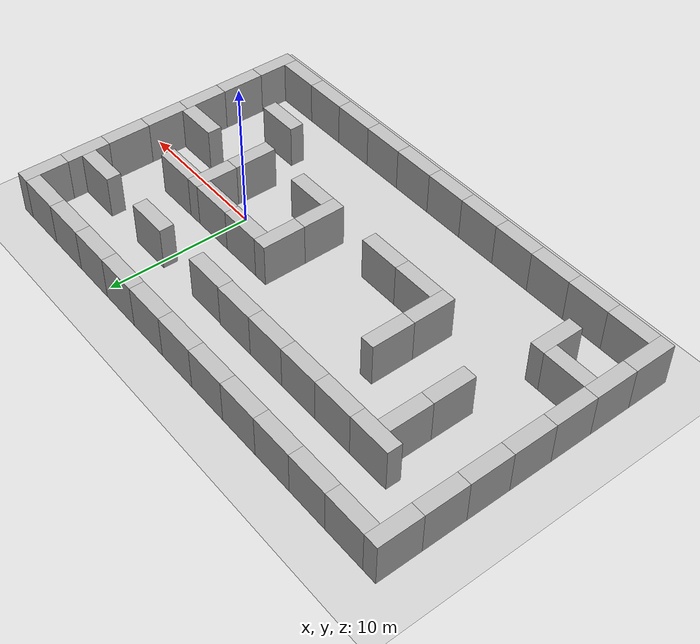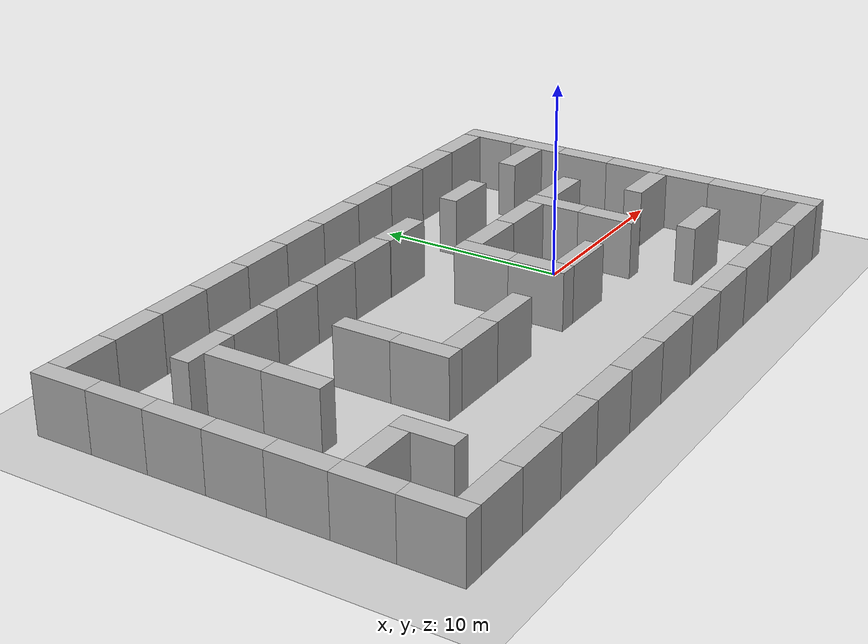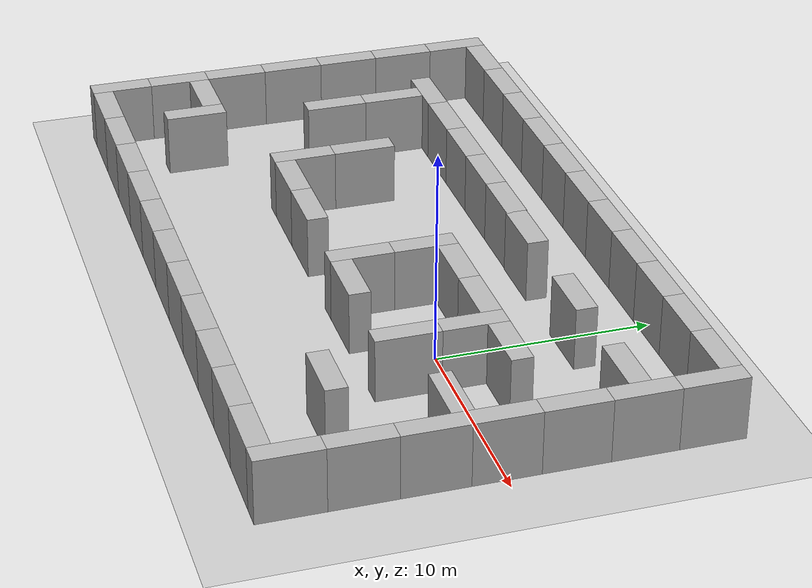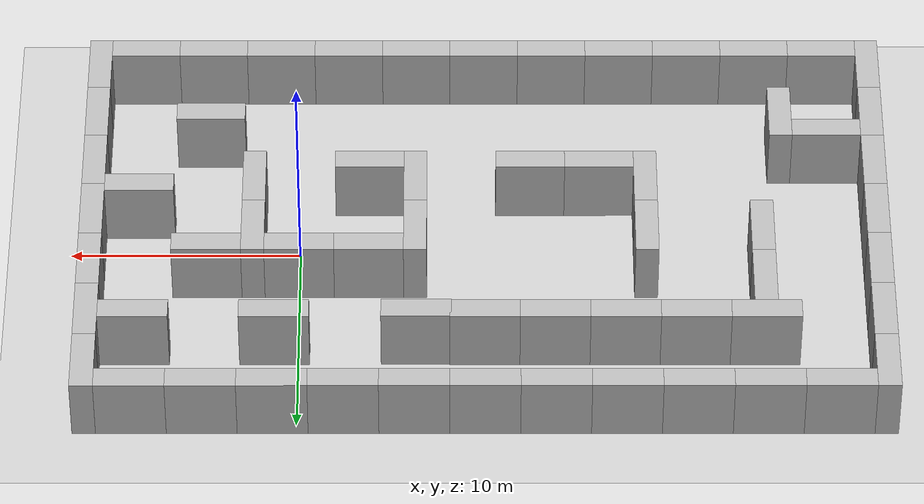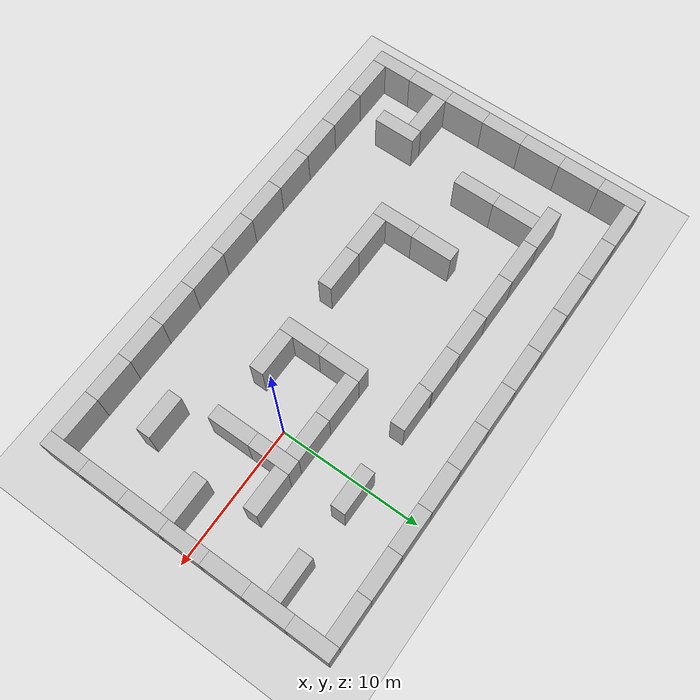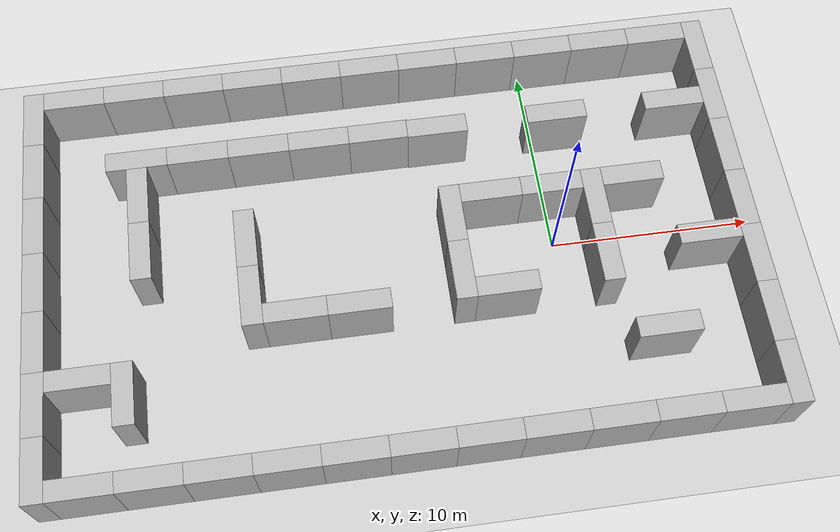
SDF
<sdf version="1.6">
 <world name="default">
  <light name="sun" type="directional">
   <pose>0 0 10 0 -0 0</pose>
   <diffuse>0.8 0.8 0.8 1</diffuse>
   <specular>0.2 0.2 0.2 1</specular>
   <attenuation>
    <range>1000</range>
    <constant>0.9</constant>
    <linear>0.01</linear>
    <quadratic>0.001</quadratic>
   </attenuation>
   <direction>-0.5 0.1 -0.9</direction>
  </light>
  <model name="ground_plane">
   <static>1</static>
   <link name="link">
    <collision name="collision">
     <geometry><plane><normal>0 0 1</normal><size>100 100</size></plane></geometry>
     <surface><friction><ode><mu>100</mu><mu2>50</mu2></ode></friction></surface>
    </collision>
    <visual name="visual">
     <cast_shadows>0</cast_shadows>
     <geometry><plane><normal>0 0 1</normal><size>100 100</size></plane></geometry>
     <material>
      <script><uri>file://media/materials/scripts/gazebo.material</uri><name>Gazebo/Grey</name></script>
     </material>
    </visual>
   </link>
  </model>
  <gravity>0 0 -9.8</gravity>
  <magnetic_field>6e-06 2.3e-05 -4.2e-05</magnetic_field>
  <atmosphere type="adiabatic"/>
  <physics name="default_physics" default="0" type="ode">
   <max_step_size>0.001</max_step_size>
   <real_time_factor>1</real_time_factor>
   <real_time_update_rate>1000</real_time_update_rate>
  </physics>
  <scene><ambient>0.4 0.4 0.4 1</ambient><background>0.7 0.7 0.7 1</background><shadows>1</shadows></scene>
  <spherical_coordinates>
   <surface_model>EARTH_WGS84</surface_model>
   <latitude_deg>0</latitude_deg>
   <longitude_deg>0</longitude_deg>
   <elevation>0</elevation>
   <heading_deg>0</heading_deg>
  </spherical_coordinates>
  <model name="brick_box_3x1x3">
   <static>1</static>
   <link name="chassis">
    <pose>0 0 1.5 0 -0 0</pose>
    <collision name="collision"><geometry><box><size>3 1 3</size></box></geometry></collision>
    <visual name="visual">
     <geometry><mesh><uri>model://brick_box_3x1x3/meshes/simple_box.dae</uri><scale>3 1 3</scale></mesh></geometry>
     <material>
      <script>
       <uri>model://brick_box_3x1x3/materials/scripts</uri>
       <uri>model://brick_box_3x1x3/materials/textures</uri>
       <name>BrickBox/Diffuse</name>
      </script>
     </material>
    </visual>
   </link>
   <pose>-8 10 0 0 -0 0</pose>
  </model>
  <model name="brick_box_3x1x3_clone">
   <static>1</static>
   <link name="chassis">
    <pose>0 0 1.5 0 -0 0</pose>
    <collision name="collision"><geometry><box><size>3 1 3</size></box></geometry></collision>
    <visual name="visual">
     <geometry><mesh><uri>model://brick_box_3x1x3/meshes/simple_box.dae</uri><scale>3 1 3</scale></mesh></geometry>
     <material>
      <script>
       <uri>model://brick_box_3x1x3/materials/scripts</uri>
       <uri>model://brick_box_3x1x3/materials/textures</uri>
       <name>BrickBox/Diffuse</name>
      </script>
     </material>
    </visual>
   </link>
   <pose>-5 10 0 0 -0 0</pose>
  </model>
  <model name="brick_box_3x1x3_clone_0">
   <static>1</static>
   <link name="chassis">
    <pose>0 0 1.5 0 -0 0</pose>
    <collision name="collision"><geometry><box><size>3 1 3</size></box></geometry></collision>
    <visual name="visual">
     <geometry><mesh><uri>model://brick_box_3x1x3/meshes/simple_box.dae</uri><scale>3 1 3</scale></mesh></geometry>
     <material>
      <script>
       <uri>model://brick_box_3x1x3/materials/scripts</uri>
       <uri>model://brick_box_3x1x3/materials/textures</uri>
       <name>BrickBox/Diffuse</name>
      </script>
     </material>
    </visual>
   </link>
   <pose>-2 10 0 0 -0 0</pose>
  </model>
  <model name="brick_box_3x1x3_clone_0_clone">
   <static>1</static>
   <link name="chassis">
    <pose>0 0 1.5 0 -0 0</pose>
    <collision name="collision"><geometry><box><size>3 1 3</size></box></geometry></collision>
    <visual name="visual">
     <geometry><mesh><uri>model://brick_box_3x1x3/meshes/simple_box.dae</uri><scale>3 1 3</scale></mesh></geometry>
     <material>
      <script>
       <uri>model://brick_box_3x1x3/materials/scripts</uri>
       <uri>model://brick_box_3x1x3/materials/textures</uri>
       <name>BrickBox/Diffuse</name>
      </script>
     </material>
    </visual>
   </link>
   <pose>1 10 0 0 -0 0</pose>
  </model>
  <model name="brick_box_3x1x3_clone_0_clone_0">
   <static>1</static>
   <link name="chassis">
    <pose>0 0 1.5 0 -0 0</pose>
    <collision name="collision"><geometry><box><size>3 1 3</size></box></geometry></collision>
    <visual name="visual">
     <geometry><mesh><uri>model://brick_box_3x1x3/meshes/simple_box.dae</uri><scale>3 1 3</scale></mesh></geometry>
     <material>
      <script>
       <uri>model://brick_box_3x1x3/materials/scripts</uri>
       <uri>model://brick_box_3x1x3/materials/textures</uri>
       <name>BrickBox/Diffuse</name>
      </script>
     </material>
    </visual>
   </link>
   <pose>4 10 0 0 -0 0</pose>
  </model>
  <model name="brick_box_3x1x3_clone_0_clone_1">
   <static>1</static>
   <link name="chassis">
    <pose>0 0 1.5 0 -0 0</pose>
    <collision name="collision"><geometry><box><size>3 1 3</size></box></geometry></collision>
    <visual name="visual">
     <geometry><mesh><uri>model://brick_box_3x1x3/meshes/simple_box.dae</uri><scale>3 1 3</scale></mesh></geometry>
     <material>
      <script>
       <uri>model://brick_box_3x1x3/materials/scripts</uri>
       <uri>model://brick_box_3x1x3/materials/textures</uri>
       <name>BrickBox/Diffuse</name>
      </script>
     </material>
    </visual>
   </link>
   <pose>7 10 0 0 -0 0</pose>
  </model>
  <model name="brick_box_3x1x3_clone_0_clone_2">
   <static>1</static>
   <link name="chassis">
    <pose>0 0 1.5 0 -0 0</pose>
    <collision name="collision"><geometry><box><size>3 1 3</size></box></geometry></collision>
    <visual name="visual">
     <geometry><mesh><uri>model://brick_box_3x1x3/meshes/simple_box.dae</uri><scale>3 1 3</scale></mesh></geometry>
     <material>
      <script>
       <uri>model://brick_box_3x1x3/materials/scripts</uri>
       <uri>model://brick_box_3x1x3/materials/textures</uri>
       <name>BrickBox/Diffuse</name>
      </script>
     </material>
    </visual>
   </link>
   <pose>-25 9 0 0 0 -1.5708</pose>
  </model>
  <model name="brick_box_3x1x3_clone_0_clone_2_clone">
   <static>1</static>
   <link name="chassis">
    <pose>0 0 1.5 0 -0 0</pose>
    <collision name="collision"><geometry><box><size>3 1 3</size></box></geometry></collision>
    <visual name="visual">
     <geometry><mesh><uri>model://brick_box_3x1x3/meshes/simple_box.dae</uri><scale>3 1 3</scale></mesh></geometry>
     <material>
      <script>
       <uri>model://brick_box_3x1x3/materials/scripts</uri>
       <uri>model://brick_box_3x1x3/materials/textures</uri>
       <name>BrickBox/Diffuse</name>
      </script>
     </material>
    </visual>
   </link>
   <pose>-25 6 0 0 0 -1.5708</pose>
  </model>
  <model name="brick_box_3x1x3_clone_0_clone_2_clone_0">
   <static>1</static>
   <link name="chassis">
    <pose>0 0 1.5 0 -0 0</pose>
    <collision name="collision"><geometry><box><size>3 1 3</size></box></geometry></collision>
    <visual name="visual">
     <geometry><mesh><uri>model://brick_box_3x1x3/meshes/simple_box.dae</uri><scale>3 1 3</scale></mesh></geometry>
     <material>
      <script>
       <uri>model://brick_box_3x1x3/materials/scripts</uri>
       <uri>model://brick_box_3x1x3/materials/textures</uri>
       <name>BrickBox/Diffuse</name>
      </script>
     </material>
    </visual>
   </link>
   <pose>-25 3 0 0 0 -1.5708</pose>
  </model>
  <model name="brick_box_3x1x3_clone_0_clone_2_clone_1">
   <static>1</static>
   <link name="chassis">
    <pose>0 0 1.5 0 -0 0</pose>
    <collision name="collision"><geometry><box><size>3 1 3</size></box></geometry></collision>
    <visual name="visual">
     <geometry><mesh><uri>model://brick_box_3x1x3/meshes/simple_box.dae</uri><scale>3 1 3</scale></mesh></geometry>
     <material>
      <script>
       <uri>model://brick_box_3x1x3/materials/scripts</uri>
       <uri>model://brick_box_3x1x3/materials/textures</uri>
       <name>BrickBox/Diffuse</name>
      </script>
     </material>
    </visual>
   </link>
   <pose>-25 0 0 0 0 -1.5708</pose>
  </model>
  <model name="brick_box_3x1x3_clone_0_clone_2_clone_2">
   <static>1</static>
   <link name="chassis">
    <pose>0 0 1.5 0 -0 0</pose>
    <collision name="collision"><geometry><box><size>3 1 3</size></box></geometry></collision>
    <visual name="visual">
     <geometry><mesh><uri>model://brick_box_3x1x3/meshes/simple_box.dae</uri><scale>3 1 3</scale></mesh></geometry>
     <material>
      <script>
       <uri>model://brick_box_3x1x3/materials/scripts</uri>
       <uri>model://brick_box_3x1x3/materials/textures</uri>
       <name>BrickBox/Diffuse</name>
      </script>
     </material>
    </visual>
   </link>
   <pose>-25 -3 0 0 0 -1.5708</pose>
  </model>
  <model name="brick_box_3x1x3_clone_0_clone_2_clone_3">
   <static>1</static>
   <link name="chassis">
    <pose>0 0 1.5 0 -0 0</pose>
    <collision name="collision"><geometry><box><size>3 1 3</size></box></geometry></collision>
    <visual name="visual">
     <geometry><mesh><uri>model://brick_box_3x1x3/meshes/simple_box.dae</uri><scale>3 1 3</scale></mesh></geometry>
     <material>
      <script>
       <uri>model://brick_box_3x1x3/materials/scripts</uri>
       <uri>model://brick_box_3x1x3/materials/textures</uri>
       <name>BrickBox/Diffuse</name>
      </script>
     </material>
    </visual>
   </link>
   <pose>-25 -6 0 0 0 -1.5708</pose>
  </model>
  <model name="brick_box_3x1x3_clone_0_clone_2_clone_4">
   <static>1</static>
   <link name="chassis">
    <pose>0 0 1.5 0 -0 0</pose>
    <collision name="collision"><geometry><box><size>3 1 3</size></box></geometry></collision>
    <visual name="visual">
     <geometry><mesh><uri>model://brick_box_3x1x3/meshes/simple_box.dae</uri><scale>3 1 3</scale></mesh></geometry>
     <material>
      <script>
       <uri>model://brick_box_3x1x3/materials/scripts</uri>
       <uri>model://brick_box_3x1x3/materials/textures</uri>
       <name>BrickBox/Diffuse</name>
      </script>
     </material>
    </visual>
   </link>
   <pose>-25 -9 0 0 0 -1.5708</pose>
  </model>
  <model name="brick_box_3x1x3_clone_0_clone_2_clone_5">
   <static>1</static>
   <link name="chassis">
    <pose>0 0 1.5 0 -0 0</pose>
    <collision name="collision"><geometry><box><size>3 1 3</size></box></geometry></collision>
    <visual name="visual">
     <geometry><mesh><uri>model://brick_box_3x1x3/meshes/simple_box.dae</uri><scale>3 1 3</scale></mesh></geometry>
     <material>
      <script>
       <uri>model://brick_box_3x1x3/materials/scripts</uri>
       <uri>model://brick_box_3x1x3/materials/textures</uri>
       <name>BrickBox/Diffuse</name>
      </script>
     </material>
    </visual>
   </link>
   <pose>9 9 0 0 0 -1.5708</pose>
  </model>
  <model name="brick_box_3x1x3_clone_0_clone_2_clone_6">
   <static>1</static>
   <link name="chassis">
    <pose>0 0 1.5 0 -0 0</pose>
    <collision name="collision"><geometry><box><size>3 1 3</size></box></geometry></collision>
    <visual name="visual">
     <geometry><mesh><uri>model://brick_box_3x1x3/meshes/simple_box.dae</uri><scale>3 1 3</scale></mesh></geometry>
     <material>
      <script>
       <uri>model://brick_box_3x1x3/materials/scripts</uri>
       <uri>model://brick_box_3x1x3/materials/textures</uri>
       <name>BrickBox/Diffuse</name>
      </script>
     </material>
    </visual>
   </link>
   <pose>9 6 0 0 0 -1.5708</pose>
  </model>
  <model name="brick_box_3x1x3_clone_0_clone_2_clone_6_clone">
   <static>1</static>
   <link name="chassis">
    <pose>0 0 1.5 0 -0 0</pose>
    <collision name="collision"><geometry><box><size>3 1 3</size></box></geometry></collision>
    <visual name="visual">
     <geometry><mesh><uri>model://brick_box_3x1x3/meshes/simple_box.dae</uri><scale>3 1 3</scale></mesh></geometry>
     <material>
      <script>
       <uri>model://brick_box_3x1x3/materials/scripts</uri>
       <uri>model://brick_box_3x1x3/materials/textures</uri>
       <name>BrickBox/Diffuse</name>
      </script>
     </material>
    </visual>
   </link>
   <pose>9 3 0 0 0 -1.5708</pose>
  </model>
  <model name="brick_box_3x1x3_clone_0_clone_2_clone_6_clone_0">
   <static>1</static>
   <link name="chassis">
    <pose>0 0 1.5 0 -0 0</pose>
    <collision name="collision"><geometry><box><size>3 1 3</size></box></geometry></collision>
    <visual name="visual">
     <geometry><mesh><uri>model://brick_box_3x1x3/meshes/simple_box.dae</uri><scale>3 1 3</scale></mesh></geometry>
     <material>
      <script>
       <uri>model://brick_box_3x1x3/materials/scripts</uri>
       <uri>model://brick_box_3x1x3/materials/textures</uri>
       <name>BrickBox/Diffuse</name>
      </script>
     </material>
    </visual>
   </link>
   <pose>9 0 0 0 0 -1.5708</pose>
  </model>
  <model name="brick_box_3x1x3_clone_0_clone_2_clone_6_clone_1">
   <static>1</static>
   <link name="chassis">
    <pose>0 0 1.5 0 -0 0</pose>
    <collision name="collision"><geometry><box><size>3 1 3</size></box></geometry></collision>
    <visual name="visual">
     <geometry><mesh><uri>model://brick_box_3x1x3/meshes/simple_box.dae</uri><scale>3 1 3</scale></mesh></geometry>
     <material>
      <script>
       <uri>model://brick_box_3x1x3/materials/scripts</uri>
       <uri>model://brick_box_3x1x3/materials/textures</uri>
       <name>BrickBox/Diffuse</name>
      </script>
     </material>
    </visual>
   </link>
   <pose>9 -3 0 0 0 -1.5708</pose>
  </model>
  <model name="brick_box_3x1x3_clone_0_clone_2_clone_6_clone_2">
   <static>1</static>
   <link name="chassis">
    <pose>0 0 1.5 0 -0 0</pose>
    <collision name="collision"><geometry><box><size>3 1 3</size></box></geometry></collision>
    <visual name="visual">
     <geometry><mesh><uri>model://brick_box_3x1x3/meshes/simple_box.dae</uri><scale>3 1 3</scale></mesh></geometry>
     <material>
      <script>
       <uri>model://brick_box_3x1x3/materials/scripts</uri>
       <uri>model://brick_box_3x1x3/materials/textures</uri>
       <name>BrickBox/Diffuse</name>
      </script>
     </material>
    </visual>
   </link>
   <pose>9 -6 0 0 0 -1.5708</pose>
  </model>
  <model name="brick_box_3x1x3_clone_0_clone_2_clone_6_clone_3">
   <static>1</static>
   <link name="chassis">
    <pose>0 0 1.5 0 -0 0</pose>
    <collision name="collision"><geometry><box><size>3 1 3</size></box></geometry></collision>
    <visual name="visual">
     <geometry><mesh><uri>model://brick_box_3x1x3/meshes/simple_box.dae</uri><scale>3 1 3</scale></mesh></geometry>
     <material>
      <script>
       <uri>model://brick_box_3x1x3/materials/scripts</uri>
       <uri>model://brick_box_3x1x3/materials/textures</uri>
       <name>BrickBox/Diffuse</name>
      </script>
     </material>
    </visual>
   </link>
   <pose>9 -9 0 0 0 -1.5708</pose>
  </model>
  <model name="brick_box_3x1x3_clone_1">
   <static>1</static>
   <link name="chassis">
    <pose>0 0 1.5 0 -0 0</pose>
    <collision name="collision"><geometry><box><size>3 1 3</size></box></geometry></collision>
    <visual name="visual">
     <geometry><mesh><uri>model://brick_box_3x1x3/meshes/simple_box.dae</uri><scale>3 1 3</scale></mesh></geometry>
     <material>
      <script>
       <uri>model://brick_box_3x1x3/materials/scripts</uri>
       <uri>model://brick_box_3x1x3/materials/textures</uri>
       <name>BrickBox/Diffuse</name>
      </script>
     </material>
    </visual>
   </link>
   <pose>-8 -10 0 0 -0 0</pose>
  </model>
  <model name="brick_box_3x1x3_clone_2">
   <static>1</static>
   <link name="chassis">
    <pose>0 0 1.5 0 -0 0</pose>
    <collision name="collision"><geometry><box><size>3 1 3</size></box></geometry></collision>
    <visual name="visual">
     <geometry><mesh><uri>model://brick_box_3x1x3/meshes/simple_box.dae</uri><scale>3 1 3</scale></mesh></geometry>
     <material>
      <script>
       <uri>model://brick_box_3x1x3/materials/scripts</uri>
       <uri>model://brick_box_3x1x3/materials/textures</uri>
       <name>BrickBox/Diffuse</name>
      </script>
     </material>
    </visual>
   </link>
   <pose>-5 -10 0 0 -0 0</pose>
  </model>
  <model name="brick_box_3x1x3_clone_3">
   <static>1</static>
   <link name="chassis">
    <pose>0 0 1.5 0 -0 0</pose>
    <collision name="collision"><geometry><box><size>3 1 3</size></box></geometry></collision>
    <visual name="visual">
     <geometry><mesh><uri>model://brick_box_3x1x3/meshes/simple_box.dae</uri><scale>3 1 3</scale></mesh></geometry>
     <material>
      <script>
       <uri>model://brick_box_3x1x3/materials/scripts</uri>
       <uri>model://brick_box_3x1x3/materials/textures</uri>
       <name>BrickBox/Diffuse</name>
      </script>
     </material>
    </visual>
   </link>
   <pose>-2 -10 0 0 -0 0</pose>
  </model>
  <model name="brick_box_3x1x3_clone_4">
   <static>1</static>
   <link name="chassis">
    <pose>0 0 1.5 0 -0 0</pose>
    <collision name="collision"><geometry><box><size>3 1 3</size></box></geometry></collision>
    <visual name="visual">
     <geometry><mesh><uri>model://brick_box_3x1x3/meshes/simple_box.dae</uri><scale>3 1 3</scale></mesh></geometry>
     <material>
      <script>
       <uri>model://brick_box_3x1x3/materials/scripts</uri>
       <uri>model://brick_box_3x1x3/materials/textures</uri>
       <name>BrickBox/Diffuse</name>
      </script>
     </material>
    </visual>
   </link>
   <pose>1 -10 0 0 -0 0</pose>
  </model>
  <model name="brick_box_3x1x3_clone_5">
   <static>1</static>
   <link name="chassis">
    <pose>0 0 1.5 0 -0 0</pose>
    <collision name="collision"><geometry><box><size>3 1 3</size></box></geometry></collision>
    <visual name="visual">
     <geometry><mesh><uri>model://brick_box_3x1x3/meshes/simple_box.dae</uri><scale>3 1 3</scale></mesh></geometry>
     <material>
      <script>
       <uri>model://brick_box_3x1x3/materials/scripts</uri>
       <uri>model://brick_box_3x1x3/materials/textures</uri>
       <name>BrickBox/Diffuse</name>
      </script>
     </material>
    </visual>
   </link>
   <pose>4 -10 0 0 -0 0</pose>
  </model>
  <model name="brick_box_3x1x3_clone_6">
   <static>1</static>
   <link name="chassis">
    <pose>0 0 1.5 0 -0 0</pose>
    <collision name="collision"><geometry><box><size>3 1 3</size></box></geometry></collision>
    <visual name="visual">
     <geometry><mesh><uri>model://brick_box_3x1x3/meshes/simple_box.dae</uri><scale>3 1 3</scale></mesh></geometry>
     <material>
      <script>
       <uri>model://brick_box_3x1x3/materials/scripts</uri>
       <uri>model://brick_box_3x1x3/materials/textures</uri>
       <name>BrickBox/Diffuse</name>
      </script>
     </material>
    </visual>
   </link>
   <pose>7 -10 0 0 -0 0</pose>
  </model>
  <model name="brick_box_3x1x3_clone_7">
   <static>1</static>
   <link name="chassis">
    <pose>0 0 1.5 0 -0 0</pose>
    <collision name="collision"><geometry><box><size>3 1 3</size></box></geometry></collision>
    <visual name="visual">
     <geometry><mesh><uri>model://brick_box_3x1x3/meshes/simple_box.dae</uri><scale>3 1 3</scale></mesh></geometry>
     <material>
      <script>
       <uri>model://brick_box_3x1x3/materials/scripts</uri>
       <uri>model://brick_box_3x1x3/materials/textures</uri>
       <name>BrickBox/Diffuse</name>
      </script>
     </material>
    </visual>
   </link>
   <pose>7 6 0 0 -0 0</pose>
  </model>
  <model name="brick_box_3x1x3_clone_8">
   <static>1</static>
   <link name="chassis">
    <pose>0 0 1.5 0 -0 0</pose>
    <collision name="collision"><geometry><box><size>3 1 3</size></box></geometry></collision>
    <visual name="visual">
     <geometry><mesh><uri>model://brick_box_3x1x3/meshes/simple_box.dae</uri><scale>3 1 3</scale></mesh></geometry>
     <material>
      <script>
       <uri>model://brick_box_3x1x3/materials/scripts</uri>
       <uri>model://brick_box_3x1x3/materials/textures</uri>
       <name>BrickBox/Diffuse</name>
      </script>
     </material>
    </visual>
   </link>
   <pose>1 6 0 0 -0 0</pose>
  </model>
  <model name="brick_box_3x1x3_clone_9">
   <static>1</static>
   <link name="chassis">
    <pose>0 0 1.5 0 -0 0</pose>
    <collision name="collision"><geometry><box><size>3 1 3</size></box></geometry></collision>
    <visual name="visual">
     <geometry><mesh><uri>model://brick_box_3x1x3/meshes/simple_box.dae</uri><scale>3 1 3</scale></mesh></geometry>
     <material>
      <script>
       <uri>model://brick_box_3x1x3/materials/scripts</uri>
       <uri>model://brick_box_3x1x3/materials/textures</uri>
       <name>BrickBox/Diffuse</name>
      </script>
     </material>
    </visual>
   </link>
   <pose>-5.05973 5.96465 0 0 -0 0</pose>
  </model>
  <model name="brick_box_3x1x3_clone_10">
   <static>1</static>
   <link name="chassis">
    <pose>0 0 1.5 0 -0 0</pose>
    <collision name="collision"><geometry><box><size>3 1 3</size></box></geometry></collision>
    <visual name="visual">
     <geometry><mesh><uri>model://brick_box_3x1x3/meshes/simple_box.dae</uri><scale>3 1 3</scale></mesh></geometry>
     <material>
      <script>
       <uri>model://brick_box_3x1x3/materials/scripts</uri>
       <uri>model://brick_box_3x1x3/materials/textures</uri>
       <name>BrickBox/Diffuse</name>
      </script>
     </material>
    </visual>
   </link>
   <pose>-3 2 0 0 -0 0</pose>
  </model>
  <model name="brick_box_3x1x3_clone_11">
   <static>1</static>
   <link name="chassis">
    <pose>0 0 1.5 0 -0 0</pose>
    <collision name="collision"><geometry><box><size>3 1 3</size></box></geometry></collision>
    <visual name="visual">
     <geometry><mesh><uri>model://brick_box_3x1x3/meshes/simple_box.dae</uri><scale>3 1 3</scale></mesh></geometry>
     <material>
      <script>
       <uri>model://brick_box_3x1x3/materials/scripts</uri>
       <uri>model://brick_box_3x1x3/materials/textures</uri>
       <name>BrickBox/Diffuse</name>
      </script>
     </material>
    </visual>
   </link>
   <pose>0 2 0 0 -0 0</pose>
  </model>
  <model name="brick_box_3x1x3_clone_12">
   <static>1</static>
   <link name="chassis">
    <pose>0 0 1.5 0 -0 0</pose>
    <collision name="collision"><geometry><box><size>3 1 3</size></box></geometry></collision>
    <visual name="visual">
     <geometry><mesh><uri>model://brick_box_3x1x3/meshes/simple_box.dae</uri><scale>3 1 3</scale></mesh></geometry>
     <material>
      <script>
       <uri>model://brick_box_3x1x3/materials/scripts</uri>
       <uri>model://brick_box_3x1x3/materials/textures</uri>
       <name>BrickBox/Diffuse</name>
      </script>
     </material>
    </visual>
   </link>
   <pose>-3 -3 0 0 -0 0</pose>
  </model>
  <model name="brick_box_3x1x3_clone_0_clone_2_clone_6_clone_0_clone">
   <static>1</static>
   <link name="chassis">
    <pose>0 0 1.5 0 -0 0</pose>
    <collision name="collision"><geometry><box><size>3 1 3</size></box></geometry></collision>
    <visual name="visual">
     <geometry><mesh><uri>model://brick_box_3x1x3/meshes/simple_box.dae</uri><scale>3 1 3</scale></mesh></geometry>
     <material>
      <script>
       <uri>model://brick_box_3x1x3/materials/scripts</uri>
       <uri>model://brick_box_3x1x3/materials/textures</uri>
       <name>BrickBox/Diffuse</name>
      </script>
     </material>
    </visual>
   </link>
   <pose>2 1 0 0 0 -1.5708</pose>
  </model>
  <model name="brick_box_3x1x3_clone_0_clone_2_clone_6_clone_0_clone_0">
   <static>1</static>
   <link name="chassis">
    <pose>0 0 1.5 0 -0 0</pose>
    <collision name="collision"><geometry><box><size>3 1 3</size></box></geometry></collision>
    <visual name="visual">
     <geometry><mesh><uri>model://brick_box_3x1x3/meshes/simple_box.dae</uri><scale>3 1 3</scale></mesh></geometry>
     <material>
      <script>
       <uri>model://brick_box_3x1x3/materials/scripts</uri>
       <uri>model://brick_box_3x1x3/materials/textures</uri>
       <name>BrickBox/Diffuse</name>
      </script>
     </material>
    </visual>
   </link>
   <pose>2 -2 0 0 0 -1.5708</pose>
  </model>
  <model name="brick_box_3x1x3_clone_0_clone_2_clone_6_clone_0_clone_1">
   <static>1</static>
   <link name="chassis">
    <pose>0 0 1.5 0 -0 0</pose>
    <collision name="collision"><geometry><box><size>3 1 3</size></box></geometry></collision>
    <visual name="visual">
     <geometry><mesh><uri>model://brick_box_3x1x3/meshes/simple_box.dae</uri><scale>3 1 3</scale></mesh></geometry>
     <material>
      <script>
       <uri>model://brick_box_3x1x3/materials/scripts</uri>
       <uri>model://brick_box_3x1x3/materials/textures</uri>
       <name>BrickBox/Diffuse</name>
      </script>
     </material>
    </visual>
   </link>
   <pose>-5 1 0 0 0 -1.5708</pose>
  </model>
  <model name="brick_box_3x1x3_clone_0_clone_2_clone_6_clone_0_clone_2">
   <static>1</static>
   <link name="chassis">
    <pose>0 0 1.5 0 -0 0</pose>
    <collision name="collision"><geometry><box><size>3 1 3</size></box></geometry></collision>
    <visual name="visual">
     <geometry><mesh><uri>model://brick_box_3x1x3/meshes/simple_box.dae</uri><scale>3 1 3</scale></mesh></geometry>
     <material>
      <script>
       <uri>model://brick_box_3x1x3/materials/scripts</uri>
       <uri>model://brick_box_3x1x3/materials/textures</uri>
       <name>BrickBox/Diffuse</name>
      </script>
     </material>
    </visual>
   </link>
   <pose>-5 -2 0 0 0 -1.5708</pose>
  </model>
  <model name="brick_box_3x1x3_clone_11_clone">
   <static>1</static>
   <link name="chassis">
    <pose>0 0 1.5 0 -0 0</pose>
    <collision name="collision"><geometry><box><size>3 1 3</size></box></geometry></collision>
    <visual name="visual">
     <geometry><mesh><uri>model://brick_box_3x1x3/meshes/simple_box.dae</uri><scale>3 1 3</scale></mesh></geometry>
     <material>
      <script>
       <uri>model://brick_box_3x1x3/materials/scripts</uri>
       <uri>model://brick_box_3x1x3/materials/textures</uri>
       <name>BrickBox/Diffuse</name>
      </script>
     </material>
    </visual>
   </link>
   <pose>4 2 0 0 -0 0</pose>
  </model>
  <model name="brick_box_3x1x3_clone_11_clone_0">
   <static>1</static>
   <link name="chassis">
    <pose>0 0 1.5 0 -0 0</pose>
    <collision name="collision"><geometry><box><size>3 1 3</size></box></geometry></collision>
    <visual name="visual">
     <geometry><mesh><uri>model://brick_box_3x1x3/meshes/simple_box.dae</uri><scale>3 1 3</scale></mesh></geometry>
     <material>
      <script>
       <uri>model://brick_box_3x1x3/materials/scripts</uri>
       <uri>model://brick_box_3x1x3/materials/textures</uri>
       <name>BrickBox/Diffuse</name>
      </script>
     </material>
    </visual>
   </link>
   <pose>7 -1.59929 0 0 -0 0</pose>
  </model>
  <model name="brick_box_3x1x3_clone_11_clone_1">
   <static>1</static>
   <link name="chassis">
    <pose>0 0 1.5 0 -0 0</pose>
    <collision name="collision"><geometry><box><size>3 1 3</size></box></geometry></collision>
    <visual name="visual">
     <geometry><mesh><uri>model://brick_box_3x1x3/meshes/simple_box.dae</uri><scale>3 1 3</scale></mesh></geometry>
     <material>
      <script>
       <uri>model://brick_box_3x1x3/materials/scripts</uri>
       <uri>model://brick_box_3x1x3/materials/textures</uri>
       <name>BrickBox/Diffuse</name>
      </script>
     </material>
    </visual>
   </link>
   <pose>4 -6 0 0 -0 0</pose>
  </model>
  <model name="brick_box_3x1x3_clone_13">
   <static>1</static>
   <link name="chassis">
    <pose>0 0 1.5 0 -0 0</pose>
    <collision name="collision"><geometry><box><size>3 1 3</size></box></geometry></collision>
    <visual name="visual">
     <geometry><mesh><uri>model://brick_box_3x1x3/meshes/simple_box.dae</uri><scale>3 1 3</scale></mesh></geometry>
     <material>
      <script>
       <uri>model://brick_box_3x1x3/materials/scripts</uri>
       <uri>model://brick_box_3x1x3/materials/textures</uri>
       <name>BrickBox/Diffuse</name>
      </script>
     </material>
    </visual>
   </link>
   <pose>-11 10 0 0 -0 0</pose>
  </model>
  <model name="brick_box_3x1x3_clone_14">
   <static>1</static>
   <link name="chassis">
    <pose>0 0 1.5 0 -0 0</pose>
    <collision name="collision"><geometry><box><size>3 1 3</size></box></geometry></collision>
    <visual name="visual">
     <geometry><mesh><uri>model://brick_box_3x1x3/meshes/simple_box.dae</uri><scale>3 1 3</scale></mesh></geometry>
     <material>
      <script>
       <uri>model://brick_box_3x1x3/materials/scripts</uri>
       <uri>model://brick_box_3x1x3/materials/textures</uri>
       <name>BrickBox/Diffuse</name>
      </script>
     </material>
    </visual>
   </link>
   <pose>-14 10 0 0 -0 0</pose>
  </model>
  <model name="brick_box_3x1x3_clone_15">
   <static>1</static>
   <link name="chassis">
    <pose>0 0 1.5 0 -0 0</pose>
    <collision name="collision"><geometry><box><size>3 1 3</size></box></geometry></collision>
    <visual name="visual">
     <geometry><mesh><uri>model://brick_box_3x1x3/meshes/simple_box.dae</uri><scale>3 1 3</scale></mesh></geometry>
     <material>
      <script>
       <uri>model://brick_box_3x1x3/materials/scripts</uri>
       <uri>model://brick_box_3x1x3/materials/textures</uri>
       <name>BrickBox/Diffuse</name>
      </script>
     </material>
    </visual>
   </link>
   <pose>-17 10 0 0 -0 0</pose>
  </model>
  <model name="brick_box_3x1x3_clone_16">
   <static>1</static>
   <link name="chassis">
    <pose>0 0 1.5 0 -0 0</pose>
    <collision name="collision"><geometry><box><size>3 1 3</size></box></geometry></collision>
    <visual name="visual">
     <geometry><mesh><uri>model://brick_box_3x1x3/meshes/simple_box.dae</uri><scale>3 1 3</scale></mesh></geometry>
     <material>
      <script>
       <uri>model://brick_box_3x1x3/materials/scripts</uri>
       <uri>model://brick_box_3x1x3/materials/textures</uri>
       <name>BrickBox/Diffuse</name>
      </script>
     </material>
    </visual>
   </link>
   <pose>-20 10 0 0 -0 0</pose>
  </model>
  <model name="brick_box_3x1x3_clone_19">
   <static>1</static>
   <link name="chassis">
    <pose>0 0 1.5 0 -0 0</pose>
    <collision name="collision"><geometry><box><size>3 1 3</size></box></geometry></collision>
    <visual name="visual">
     <geometry><mesh><uri>model://brick_box_3x1x3/meshes/simple_box.dae</uri><scale>3 1 3</scale></mesh></geometry>
     <material>
      <script>
       <uri>model://brick_box_3x1x3/materials/scripts</uri>
       <uri>model://brick_box_3x1x3/materials/textures</uri>
       <name>BrickBox/Diffuse</name>
      </script>
     </material>
    </visual>
   </link>
   <pose>-11 -10 0 0 -0 0</pose>
  </model>
  <model name="brick_box_3x1x3_clone_20">
   <static>1</static>
   <link name="chassis">
    <pose>0 0 1.5 0 -0 0</pose>
    <collision name="collision"><geometry><box><size>3 1 3</size></box></geometry></collision>
    <visual name="visual">
     <geometry><mesh><uri>model://brick_box_3x1x3/meshes/simple_box.dae</uri><scale>3 1 3</scale></mesh></geometry>
     <material>
      <script>
       <uri>model://brick_box_3x1x3/materials/scripts</uri>
       <uri>model://brick_box_3x1x3/materials/textures</uri>
       <name>BrickBox/Diffuse</name>
      </script>
     </material>
    </visual>
   </link>
   <pose>-14 -10 0 0 -0 0</pose>
  </model>
  <model name="brick_box_3x1x3_clone_21">
   <static>1</static>
   <link name="chassis">
    <pose>0 0 1.5 0 -0 0</pose>
    <collision name="collision"><geometry><box><size>3 1 3</size></box></geometry></collision>
    <visual name="visual">
     <geometry><mesh><uri>model://brick_box_3x1x3/meshes/simple_box.dae</uri><scale>3 1 3</scale></mesh></geometry>
     <material>
      <script>
       <uri>model://brick_box_3x1x3/materials/scripts</uri>
       <uri>model://brick_box_3x1x3/materials/textures</uri>
       <name>BrickBox/Diffuse</name>
      </script>
     </material>
    </visual>
   </link>
   <pose>-17 -10 0 0 -0 0</pose>
  </model>
  <model name="brick_box_3x1x3_clone_22">
   <static>1</static>
   <link name="chassis">
    <pose>0 0 1.5 0 -0 0</pose>
    <collision name="collision"><geometry><box><size>3 1 3</size></box></geometry></collision>
    <visual name="visual">
     <geometry><mesh><uri>model://brick_box_3x1x3/meshes/simple_box.dae</uri><scale>3 1 3</scale></mesh></geometry>
     <material>
      <script>
       <uri>model://brick_box_3x1x3/materials/scripts</uri>
       <uri>model://brick_box_3x1x3/materials/textures</uri>
       <name>BrickBox/Diffuse</name>
      </script>
     </material>
    </visual>
   </link>
   <pose>-20 -10 0 0 -0 0</pose>
  </model>
  <model name="brick_box_3x1x3_clone_23">
   <static>1</static>
   <link name="chassis">
    <pose>0 0 1.5 0 -0 0</pose>
    <collision name="collision"><geometry><box><size>3 1 3</size></box></geometry></collision>
    <visual name="visual">
     <geometry><mesh><uri>model://brick_box_3x1x3/meshes/simple_box.dae</uri><scale>3 1 3</scale></mesh></geometry>
     <material>
      <script>
       <uri>model://brick_box_3x1x3/materials/scripts</uri>
       <uri>model://brick_box_3x1x3/materials/textures</uri>
       <name>BrickBox/Diffuse</name>
      </script>
     </material>
    </visual>
   </link>
   <pose>-23 -10 0 0 -0 0</pose>
  </model>
  <model name="brick_box_3x1x3_clone_0_clone_2_clone_6_clone_0_clone_1_clone">
   <static>1</static>
   <link name="chassis">
    <pose>0 0 1.5 0 -0 0</pose>
    <collision name="collision"><geometry><box><size>3 1 3</size></box></geometry></collision>
    <visual name="visual">
     <geometry><mesh><uri>model://brick_box_3x1x3/meshes/simple_box.dae</uri><scale>3 1 3</scale></mesh></geometry>
     <material>
      <script>
       <uri>model://brick_box_3x1x3/materials/scripts</uri>
       <uri>model://brick_box_3x1x3/materials/textures</uri>
       <name>BrickBox/Diffuse</name>
      </script>
     </material>
    </visual>
   </link>
   <pose>-15 1 0 0 0 -1.5708</pose>
  </model>
  <model name="brick_box_3x1x3_clone_0_clone_2_clone_6_clone_0_clone_1_clone_0">
   <static>1</static>
   <link name="chassis">
    <pose>0 0 1.5 0 -0 0</pose>
    <collision name="collision"><geometry><box><size>3 1 3</size></box></geometry></collision>
    <visual name="visual">
     <geometry><mesh><uri>model://brick_box_3x1x3/meshes/simple_box.dae</uri><scale>3 1 3</scale></mesh></geometry>
     <material>
      <script>
       <uri>model://brick_box_3x1x3/materials/scripts</uri>
       <uri>model://brick_box_3x1x3/materials/textures</uri>
       <name>BrickBox/Diffuse</name>
      </script>
     </material>
    </visual>
   </link>
   <pose>-15 -2 0 0 0 -1.5708</pose>
  </model>
  <model name="brick_box_3x1x3_clone_0_clone_2_clone_6_clone_0_clone_1_clone_1">
   <static>1</static>
   <link name="chassis">
    <pose>0 0 1.5 0 -0 0</pose>
    <collision name="collision"><geometry><box><size>3 1 3</size></box></geometry></collision>
    <visual name="visual">
     <geometry><mesh><uri>model://brick_box_3x1x3/meshes/simple_box.dae</uri><scale>3 1 3</scale></mesh></geometry>
     <material>
      <script>
       <uri>model://brick_box_3x1x3/materials/scripts</uri>
       <uri>model://brick_box_3x1x3/materials/textures</uri>
       <name>BrickBox/Diffuse</name>
      </script>
     </material>
    </visual>
   </link>
   <pose>-20 1 0 0 0 -1.5708</pose>
  </model>
  <model name="brick_box_3x1x3_clone_9_clone">
   <static>1</static>
   <link name="chassis">
    <pose>0 0 1.5 0 -0 0</pose>
    <collision name="collision"><geometry><box><size>3 1 3</size></box></geometry></collision>
    <visual name="visual">
     <geometry><mesh><uri>model://brick_box_3x1x3/meshes/simple_box.dae</uri><scale>3 1 3</scale></mesh></geometry>
     <material>
      <script>
       <uri>model://brick_box_3x1x3/materials/scripts</uri>
       <uri>model://brick_box_3x1x3/materials/textures</uri>
       <name>BrickBox/Diffuse</name>
      </script>
     </material>
    </visual>
   </link>
   <pose>-8 6 0 0 -0 0</pose>
  </model>
  <model name="brick_box_3x1x3_clone_9_clone_0">
   <static>1</static>
   <link name="chassis">
    <pose>0 0 1.5 0 -0 0</pose>
    <collision name="collision"><geometry><box><size>3 1 3</size></box></geometry></collision>
    <visual name="visual">
     <geometry><mesh><uri>model://brick_box_3x1x3/meshes/simple_box.dae</uri><scale>3 1 3</scale></mesh></geometry>
     <material>
      <script>
       <uri>model://brick_box_3x1x3/materials/scripts</uri>
       <uri>model://brick_box_3x1x3/materials/textures</uri>
       <name>BrickBox/Diffuse</name>
      </script>
     </material>
    </visual>
   </link>
   <pose>-11 6 0 0 -0 0</pose>
  </model>
  <model name="brick_box_3x1x3_clone_9_clone_1">
   <static>1</static>
   <link name="chassis">
    <pose>0 0 1.5 0 -0 0</pose>
    <collision name="collision"><geometry><box><size>3 1 3</size></box></geometry></collision>
    <visual name="visual">
     <geometry><mesh><uri>model://brick_box_3x1x3/meshes/simple_box.dae</uri><scale>3 1 3</scale></mesh></geometry>
     <material>
      <script>
       <uri>model://brick_box_3x1x3/materials/scripts</uri>
       <uri>model://brick_box_3x1x3/materials/textures</uri>
       <name>BrickBox/Diffuse</name>
      </script>
     </material>
    </visual>
   </link>
   <pose>-14 6 0 0 -0 0</pose>
  </model>
  <model name="brick_box_3x1x3_clone_9_clone_2">
   <static>1</static>
   <link name="chassis">
    <pose>0 0 1.5 0 -0 0</pose>
    <collision name="collision"><geometry><box><size>3 1 3</size></box></geometry></collision>
    <visual name="visual">
     <geometry><mesh><uri>model://brick_box_3x1x3/meshes/simple_box.dae</uri><scale>3 1 3</scale></mesh></geometry>
     <material>
      <script>
       <uri>model://brick_box_3x1x3/materials/scripts</uri>
       <uri>model://brick_box_3x1x3/materials/textures</uri>
       <name>BrickBox/Diffuse</name>
      </script>
     </material>
    </visual>
   </link>
   <pose>-17 6 0 0 -0 0</pose>
  </model>
  <model name="brick_box_3x1x3_clone_9_clone_3">
   <static>1</static>
   <link name="chassis">
    <pose>0 0 1.5 0 -0 0</pose>
    <collision name="collision"><geometry><box><size>3 1 3</size></box></geometry></collision>
    <visual name="visual">
     <geometry><mesh><uri>model://brick_box_3x1x3/meshes/simple_box.dae</uri><scale>3 1 3</scale></mesh></geometry>
     <material>
      <script>
       <uri>model://brick_box_3x1x3/materials/scripts</uri>
       <uri>model://brick_box_3x1x3/materials/textures</uri>
       <name>BrickBox/Diffuse</name>
      </script>
     </material>
    </visual>
   </link>
   <pose>-20 6 0 0 -0 0</pose>
  </model>
  <model name="brick_box_3x1x3_clone_0_clone_2_clone_6_clone_0_clone_1_clone_1_clone">
   <static>1</static>
   <link name="chassis">
    <pose>0 0 1.5 0 -0 0</pose>
    <collision name="collision"><geometry><box><size>3 1 3</size></box></geometry></collision>
    <visual name="visual">
     <geometry><mesh><uri>model://brick_box_3x1x3/meshes/simple_box.dae</uri><scale>3 1 3</scale></mesh></geometry>
     <material>
      <script>
       <uri>model://brick_box_3x1x3/materials/scripts</uri>
       <uri>model://brick_box_3x1x3/materials/textures</uri>
       <name>BrickBox/Diffuse</name>
      </script>
     </material>
    </visual>
   </link>
   <pose>-20 4 0 0 0 -1.5708</pose>
  </model>
  <model name="brick_box_3x1x3_clone_9_clone_1_clone">
   <static>1</static>
   <link name="chassis">
    <pose>0 0 1.5 0 -0 0</pose>
    <collision name="collision"><geometry><box><size>3 1 3</size></box></geometry></collision>
    <visual name="visual">
     <geometry><mesh><uri>model://brick_box_3x1x3/meshes/simple_box.dae</uri><scale>3 1 3</scale></mesh></geometry>
     <material>
      <script>
       <uri>model://brick_box_3x1x3/materials/scripts</uri>
       <uri>model://brick_box_3x1x3/materials/textures</uri>
       <name>BrickBox/Diffuse</name>
      </script>
     </material>
    </visual>
   </link>
   <pose>-13 -3 0 0 -0 0</pose>
  </model>
  <model name="brick_box_3x1x3_clone_9_clone_1_clone_0">
   <static>1</static>
   <link name="chassis">
    <pose>0 0 1.5 0 -0 0</pose>
    <collision name="collision"><geometry><box><size>3 1 3</size></box></geometry></collision>
    <visual name="visual">
     <geometry><mesh><uri>model://brick_box_3x1x3/meshes/simple_box.dae</uri><scale>3 1 3</scale></mesh></geometry>
     <material>
      <script>
       <uri>model://brick_box_3x1x3/materials/scripts</uri>
       <uri>model://brick_box_3x1x3/materials/textures</uri>
       <name>BrickBox/Diffuse</name>
      </script>
     </material>
    </visual>
   </link>
   <pose>-10 -3 0 0 -0 0</pose>
  </model>
  <model name="brick_box_3x1x3_clone_16_clone">
   <static>1</static>
   <link name="chassis">
    <pose>0 0 1.5 0 -0 0</pose>
    <collision name="collision"><geometry><box><size>3 1 3</size></box></geometry></collision>
    <visual name="visual">
     <geometry><mesh><uri>model://brick_box_3x1x3/meshes/simple_box.dae</uri><scale>3 1 3</scale></mesh></geometry>
     <material>
      <script>
       <uri>model://brick_box_3x1x3/materials/scripts</uri>
       <uri>model://brick_box_3x1x3/materials/textures</uri>
       <name>BrickBox/Diffuse</name>
      </script>
     </material>
    </visual>
   </link>
   <pose>-23 10 0 0 -0 0</pose>
  </model>
  <model name="brick_box_3x1x3_clone_9_clone_2_clone">
   <static>1</static>
   <link name="chassis">
    <pose>0 0 1.5 0 -0 0</pose>
    <collision name="collision"><geometry><box><size>3 1 3</size></box></geometry></collision>
    <visual name="visual">
     <geometry><mesh><uri>model://brick_box_3x1x3/meshes/simple_box.dae</uri><scale>3 1 3</scale></mesh></geometry>
     <material>
      <script>
       <uri>model://brick_box_3x1x3/materials/scripts</uri>
       <uri>model://brick_box_3x1x3/materials/textures</uri>
       <name>BrickBox/Diffuse</name>
      </script>
     </material>
    </visual>
   </link>
   <pose>-23 -5 0 0 -0 0</pose>
  </model>
  <model name="brick_box_3x1x3_clone_0_clone_2_clone_3_clone">
   <static>1</static>
   <link name="chassis">
    <pose>0 0 1.5 0 -0 0</pose>
    <collision name="collision"><geometry><box><size>3 1 3</size></box></geometry></collision>
    <visual name="visual">
     <geometry><mesh><uri>model://brick_box_3x1x3/meshes/simple_box.dae</uri><scale>3 1 3</scale></mesh></geometry>
     <material>
      <script>
       <uri>model://brick_box_3x1x3/materials/scripts</uri>
       <uri>model://brick_box_3x1x3/materials/textures</uri>
       <name>BrickBox/Diffuse</name>
      </script>
     </material>
    </visual>
   </link>
   <pose>-21 -6 0 0 0 -1.5708</pose>
  </model>
 </world>
</sdf>
